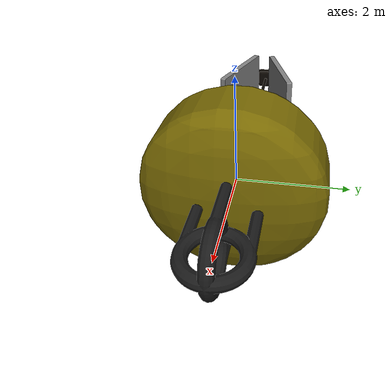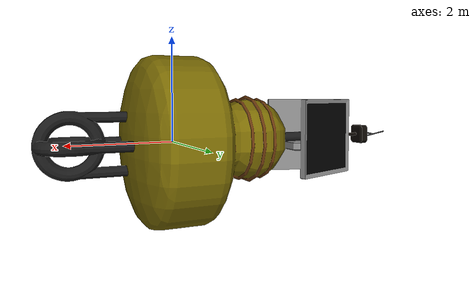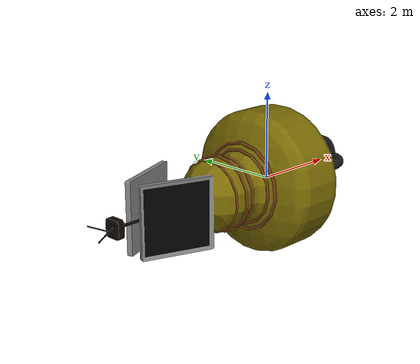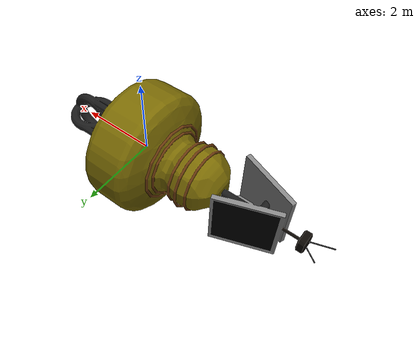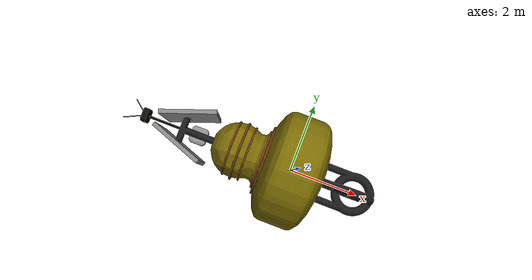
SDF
<?xml version="1.0"?>
<sdf version="1.5">
  <model name="aquabot_sonar_buoy">
    <link name="link">
      <inertial>
          <pose>0 0 0.0 0 0 0</pose>
          <mass>100</mass>
          <inertia>
              <ixx>23.16</ixx>
              <ixy>0</ixy>
              <ixz>0</ixz>
              <iyy>23.16</iyy>
              <iyz>0</iyz>
              <izz>2.25</izz>
          </inertia>
      </inertial>
      <collision name="collision_inner">
          <pose>0 0 0 0 1.57 0</pose>
          <geometry>
              <cylinder>
                  <radius>1.3</radius>
                  <length>7.5</length>
              </cylinder>
          </geometry>
      </collision>
      <collision name="collision_outer">
          <pose>0 0 0.0 0 1.57 0</pose>
          <geometry>
              <cylinder>
                  <radius>1.65</radius>
                  <length>1.5</length>
              </cylinder>
          </geometry>
      </collision>
      <visual name="visual">
        <pose>0.0 0.0 0.0 0 -1.57 0 </pose>
        <geometry>
          <mesh>
            <scale>1 1 1</scale>
            <uri>mesh/sonar_buoy.dae</uri>
          </mesh>
        </geometry>
      </visual>
    </link>
  </model>
</sdf>
